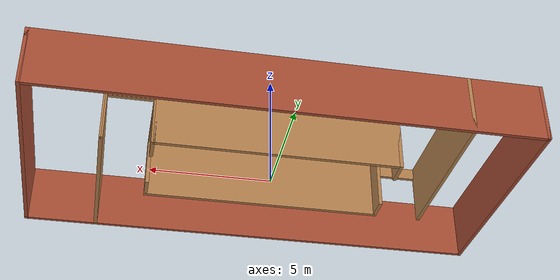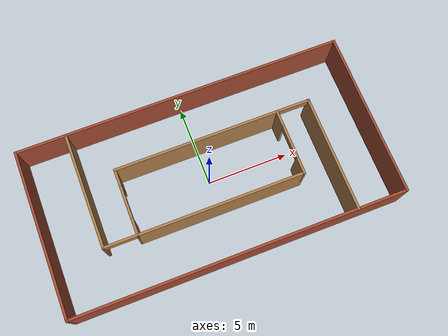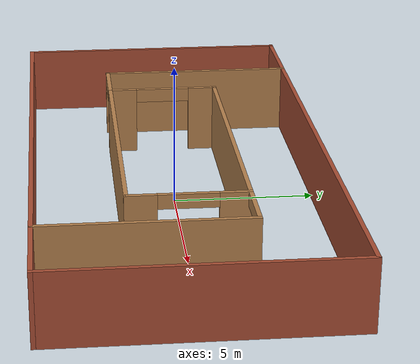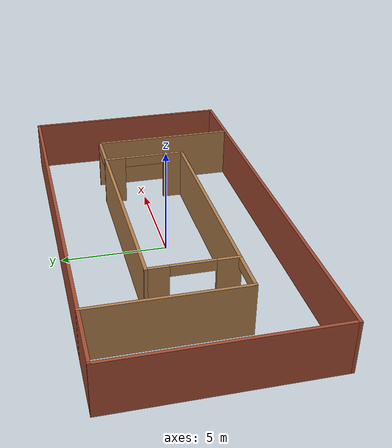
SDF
<?xml version='1.0'?>
<sdf version='1.7'>
  <model name='td7_world_base'>
    <pose>0 0 0 0 -0 0</pose>
    <link name='Wall_0'>
      <collision name='Wall_0_Collision'>
        <geometry>
          <box>
            <size>10.15 0.15 2.5</size>
          </box>
        </geometry>
        <pose>0 0 1.25 0 -0 0</pose>
      </collision>
      <visual name='Wall_0_Visual'>
        <pose>0 0 1.25 0 -0 0</pose>
        <geometry>
          <box>
            <size>10.15 0.15 2.5</size>
          </box>
        </geometry>
        <material>
          <script>
            <uri>file://media/materials/scripts/gazebo.material</uri>
            <name>Gazebo/Bricks</name>
          </script>
          <ambient>1 1 1 1</ambient>
        </material>
        <meta>
          <layer>0</layer>
        </meta>
      </visual>
      <pose>10 0 0 0 -0 -1.5708</pose>
    </link>
    <link name='Wall_1'>
      <collision name='Wall_1_Collision'>
        <geometry>
          <box>
            <size>20.15 0.15 2.5</size>
          </box>
        </geometry>
        <pose>0 0 1.25 0 -0 0</pose>
      </collision>
      <visual name='Wall_1_Visual'>
        <pose>0 0 1.25 0 -0 0</pose>
        <geometry>
          <box>
            <size>20.15 0.15 2.5</size>
          </box>
        </geometry>
        <material>
          <script>
            <uri>file://media/materials/scripts/gazebo.material</uri>
            <name>Gazebo/Bricks</name>
          </script>
          <ambient>1 1 1 1</ambient>
        </material>
        <meta>
          <layer>0</layer>
        </meta>
      </visual>
      <pose>0 -5 0 0 -0 3.14159</pose>
    </link>
    <link name='Wall_11'>
      <pose>-5 0 0 0 -0 -1.5708</pose>
      <visual name='Wall_11_Visual_0'>
        <pose>-1.5375 0 1.25 0 -0 0</pose>
        <geometry>
          <box>
            <size>1.075 0.15 2.5</size>
          </box>
        </geometry>
        <material>
          <script>
            <uri>file://media/materials/scripts/gazebo.material</uri>
            <name>Gazebo/Wood</name>
          </script>
          <ambient>1 1 1 1</ambient>
        </material>
        <meta>
          <layer>0</layer>
        </meta>
      </visual>
      <collision name='Wall_11_Collision_0'>
        <geometry>
          <box>
            <size>1.075 0.15 2.5</size>
          </box>
        </geometry>
        <pose>-1.5375 0 1.25 0 -0 0</pose>
      </collision>
      <visual name='Wall_11_Visual_1'>
        <pose>1.5375 0 1.25 0 -0 0</pose>
        <geometry>
          <box>
            <size>1.075 0.15 2.5</size>
          </box>
        </geometry>
        <material>
          <script>
            <uri>file://media/materials/scripts/gazebo.material</uri>
            <name>Gazebo/Wood</name>
          </script>
          <ambient>1 1 1 1</ambient>
        </material>
        <meta>
          <layer>0</layer>
        </meta>
      </visual>
      <collision name='Wall_11_Collision_1'>
        <geometry>
          <box>
            <size>1.075 0.15 2.5</size>
          </box>
        </geometry>
        <pose>1.5375 0 1.25 0 -0 0</pose>
      </collision>
      <visual name='Wall_11_Visual_2'>
        <pose>0 0 2.25 0 -0 0</pose>
        <geometry>
          <box>
            <size>2 0.15 0.5</size>
          </box>
        </geometry>
        <material>
          <script>
            <uri>file://media/materials/scripts/gazebo.material</uri>
            <name>Gazebo/Wood</name>
          </script>
          <ambient>1 1 1 1</ambient>
        </material>
        <meta>
          <layer>0</layer>
        </meta>
      </visual>
      <collision name='Wall_11_Collision_2'>
        <geometry>
          <box>
            <size>2 0.15 0.5</size>
          </box>
        </geometry>
        <pose>0 0 2.25 0 -0 0</pose>
      </collision>
    </link>
    <link name='Wall_13'>
      <pose>5 0 0 0 -0 1.5708</pose>
      <visual name='Wall_13_Visual_0'>
        <pose>-1.5375 0 1.25 0 -0 0</pose>
        <geometry>
          <box>
            <size>1.075 0.15 2.5</size>
          </box>
        </geometry>
        <material>
          <script>
            <uri>file://media/materials/scripts/gazebo.material</uri>
            <name>Gazebo/Wood</name>
          </script>
          <ambient>1 1 1 1</ambient>
        </material>
        <meta>
          <layer>0</layer>
        </meta>
      </visual>
      <collision name='Wall_13_Collision_0'>
        <geometry>
          <box>
            <size>1.075 0.15 2.5</size>
          </box>
        </geometry>
        <pose>-1.5375 0 1.25 0 -0 0</pose>
      </collision>
      <visual name='Wall_13_Visual_1'>
        <pose>1.5375 0 1.25 0 -0 0</pose>
        <geometry>
          <box>
            <size>1.075 0.15 2.5</size>
          </box>
        </geometry>
        <material>
          <script>
            <uri>file://media/materials/scripts/gazebo.material</uri>
            <name>Gazebo/Wood</name>
          </script>
          <ambient>1 1 1 1</ambient>
        </material>
        <meta>
          <layer>0</layer>
        </meta>
      </visual>
      <collision name='Wall_13_Collision_1'>
        <geometry>
          <box>
            <size>1.075 0.15 2.5</size>
          </box>
        </geometry>
        <pose>1.5375 0 1.25 0 -0 0</pose>
      </collision>
      <visual name='Wall_13_Visual_2'>
        <pose>0 0 2.25 0 -0 0</pose>
        <geometry>
          <box>
            <size>2 0.15 0.5</size>
          </box>
        </geometry>
        <material>
          <script>
            <uri>file://media/materials/scripts/gazebo.material</uri>
            <name>Gazebo/Wood</name>
          </script>
          <ambient>1 1 1 1</ambient>
        </material>
        <meta>
          <layer>0</layer>
        </meta>
      </visual>
      <collision name='Wall_13_Collision_2'>
        <geometry>
          <box>
            <size>2 0.15 0.5</size>
          </box>
        </geometry>
        <pose>0 0 2.25 0 -0 0</pose>
      </collision>
    </link>
    <link name='Wall_2'>
      <collision name='Wall_2_Collision'>
        <geometry>
          <box>
            <size>10.15 0.15 2.5</size>
          </box>
        </geometry>
        <pose>0 0 1.25 0 -0 0</pose>
      </collision>
      <visual name='Wall_2_Visual'>
        <pose>0 0 1.25 0 -0 0</pose>
        <geometry>
          <box>
            <size>10.15 0.15 2.5</size>
          </box>
        </geometry>
        <material>
          <script>
            <uri>file://media/materials/scripts/gazebo.material</uri>
            <name>Gazebo/Bricks</name>
          </script>
          <ambient>1 1 1 1</ambient>
        </material>
        <meta>
          <layer>0</layer>
        </meta>
      </visual>
      <pose>-10 0 0 0 -0 1.5708</pose>
    </link>
    <link name='Wall_3'>
      <collision name='Wall_3_Collision'>
        <geometry>
          <box>
            <size>20.15 0.15 2.5</size>
          </box>
        </geometry>
        <pose>0 0 1.25 0 -0 0</pose>
      </collision>
      <visual name='Wall_3_Visual'>
        <pose>0 0 1.25 0 -0 0</pose>
        <geometry>
          <box>
            <size>20.15 0.15 2.5</size>
          </box>
        </geometry>
        <material>
          <script>
            <uri>file://media/materials/scripts/gazebo.material</uri>
            <name>Gazebo/Bricks</name>
          </script>
          <ambient>1 1 1 1</ambient>
        </material>
        <meta>
          <layer>0</layer>
        </meta>
      </visual>
      <pose>0 5 0 0 -0 0</pose>
    </link>
    <link name='Wall_5'>
      <collision name='Wall_5_Collision'>
        <geometry>
          <box>
            <size>7.15 0.15 2.5</size>
          </box>
        </geometry>
        <pose>0 0 1.25 0 -0 0</pose>
      </collision>
      <visual name='Wall_5_Visual'>
        <pose>0 0 1.25 0 -0 0</pose>
        <geometry>
          <box>
            <size>7.15 0.15 2.5</size>
          </box>
        </geometry>
        <material>
          <script>
            <uri>file://media/materials/scripts/gazebo.material</uri>
            <name>Gazebo/Wood</name>
          </script>
          <ambient>1 1 1 1</ambient>
        </material>
        <meta>
          <layer>0</layer>
        </meta>
      </visual>
      <pose>-7 1.5 0 0 -0 -1.5708</pose>
    </link>
    <link name='Wall_6'>
      <pose>-1 -2 0 0 -0 0</pose>
      <visual name='Wall_6_Visual_0'>
        <pose>-6.0375 0 1.25 0 -0 0</pose>
        <geometry>
          <box>
            <size>0.075 0.15 2.5</size>
          </box>
        </geometry>
        <material>
          <script>
            <uri>file://media/materials/scripts/gazebo.material</uri>
            <name>Gazebo/Wood</name>
          </script>
          <ambient>1 1 1 1</ambient>
        </material>
        <meta>
          <layer>0</layer>
        </meta>
      </visual>
      <collision name='Wall_6_Collision_0'>
        <geometry>
          <box>
            <size>0.075 0.15 2.5</size>
          </box>
        </geometry>
        <pose>-6.0375 0 1.25 0 -0 0</pose>
      </collision>
      <visual name='Wall_6_Visual_1'>
        <pose>1.0375 0 1.25 0 -0 0</pose>
        <geometry>
          <box>
            <size>10.075 0.15 2.5</size>
          </box>
        </geometry>
        <material>
          <script>
            <uri>file://media/materials/scripts/gazebo.material</uri>
            <name>Gazebo/Wood</name>
          </script>
          <ambient>1 1 1 1</ambient>
        </material>
        <meta>
          <layer>0</layer>
        </meta>
      </visual>
      <collision name='Wall_6_Collision_1'>
        <geometry>
          <box>
            <size>10.075 0.15 2.5</size>
          </box>
        </geometry>
        <pose>1.0375 0 1.25 0 -0 0</pose>
      </collision>
      <visual name='Wall_6_Visual_2'>
        <pose>-5 0 2.25 0 -0 0</pose>
        <geometry>
          <box>
            <size>2 0.15 0.5</size>
          </box>
        </geometry>
        <material>
          <script>
            <uri>file://media/materials/scripts/gazebo.material</uri>
            <name>Gazebo/Wood</name>
          </script>
          <ambient>1 1 1 1</ambient>
        </material>
        <meta>
          <layer>0</layer>
        </meta>
      </visual>
      <collision name='Wall_6_Collision_2'>
        <geometry>
          <box>
            <size>2 0.15 0.5</size>
          </box>
        </geometry>
        <pose>-5 0 2.25 0 -0 0</pose>
      </collision>
    </link>
    <link name='Wall_8'>
      <pose>1 2 0 0 -0 0</pose>
      <visual name='Wall_8_Visual_0'>
        <pose>-1.0375 0 1.25 0 -0 0</pose>
        <geometry>
          <box>
            <size>10.075 0.15 2.5</size>
          </box>
        </geometry>
        <material>
          <script>
            <uri>file://media/materials/scripts/gazebo.material</uri>
            <name>Gazebo/Wood</name>
          </script>
          <ambient>1 1 1 1</ambient>
        </material>
        <meta>
          <layer>0</layer>
        </meta>
      </visual>
      <collision name='Wall_8_Collision_0'>
        <geometry>
          <box>
            <size>10.075 0.15 2.5</size>
          </box>
        </geometry>
        <pose>-1.0375 0 1.25 0 -0 0</pose>
      </collision>
      <visual name='Wall_8_Visual_1'>
        <pose>6.0375 0 1.25 0 -0 0</pose>
        <geometry>
          <box>
            <size>0.075 0.15 2.5</size>
          </box>
        </geometry>
        <material>
          <script>
            <uri>file://media/materials/scripts/gazebo.material</uri>
            <name>Gazebo/Wood</name>
          </script>
          <ambient>1 1 1 1</ambient>
        </material>
        <meta>
          <layer>0</layer>
        </meta>
      </visual>
      <collision name='Wall_8_Collision_1'>
        <geometry>
          <box>
            <size>0.075 0.15 2.5</size>
          </box>
        </geometry>
        <pose>6.0375 0 1.25 0 -0 0</pose>
      </collision>
      <visual name='Wall_8_Visual_2'>
        <pose>5 0 2.25 0 -0 0</pose>
        <geometry>
          <box>
            <size>2 0.15 0.5</size>
          </box>
        </geometry>
        <material>
          <script>
            <uri>file://media/materials/scripts/gazebo.material</uri>
            <name>Gazebo/Wood</name>
          </script>
          <ambient>1 1 1 1</ambient>
        </material>
        <meta>
          <layer>0</layer>
        </meta>
      </visual>
      <collision name='Wall_8_Collision_2'>
        <geometry>
          <box>
            <size>2 0.15 0.5</size>
          </box>
        </geometry>
        <pose>5 0 2.25 0 -0 0</pose>
      </collision>
    </link>
    <link name='Wall_9'>
      <collision name='Wall_9_Collision'>
        <geometry>
          <box>
            <size>7.15 0.15 2.5</size>
          </box>
        </geometry>
        <pose>0 0 1.25 0 -0 0</pose>
      </collision>
      <visual name='Wall_9_Visual'>
        <pose>0 0 1.25 0 -0 0</pose>
        <geometry>
          <box>
            <size>7.15 0.15 2.5</size>
          </box>
        </geometry>
        <material>
          <script>
            <uri>file://media/materials/scripts/gazebo.material</uri>
            <name>Gazebo/Wood</name>
          </script>
          <ambient>1 1 1 1</ambient>
        </material>
        <meta>
          <layer>0</layer>
        </meta>
      </visual>
      <pose>7 -1.5 0 0 -0 -1.5708</pose>
    </link>
    <static>1</static>
  </model>
</sdf>
